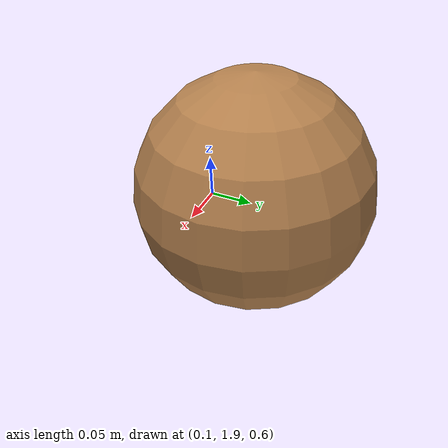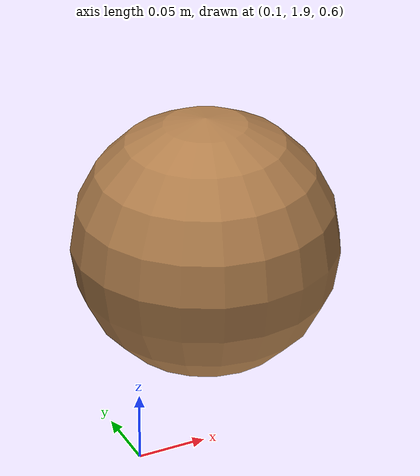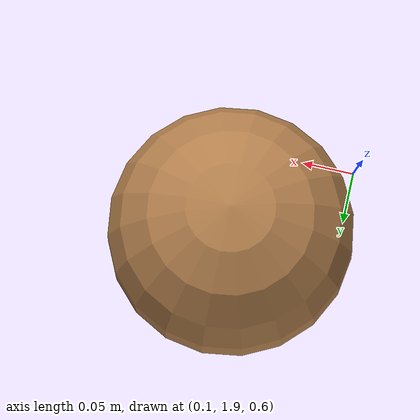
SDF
<sdf version="1.4">
  <world name="default">
    <light name="sun" type="directional">
      <cast_shadows>1</cast_shadows>
      <pose>0 0 10 0 -0 0</pose>
      <diffuse>0.8 0.8 0.8 1</diffuse>
      <specular>0.2 0.2 0.2 1</specular>
      <attenuation>
        <range>1000</range>
        <constant>0.9</constant>
        <linear>0.01</linear>
        <quadratic>0.001</quadratic>
      </attenuation>
      <direction>-0.5 0.1 -0.9</direction>
    </light>
    <physics type="ode">
      <max_step_size>0.001</max_step_size>
      <real_time_factor>1</real_time_factor>
      <real_time_update_rate>1000</real_time_update_rate>
      <gravity>0 0 -9.8</gravity>
    </physics>
    <scene>
      <ambient>0.4 0.4 0.4 1</ambient>
      <background>0.7 0.7 0.7 1</background>
      <shadows>1</shadows>
    </scene>
    <spherical_coordinates>
      <surface_model>EARTH_WGS84</surface_model>
      <latitude_deg>0</latitude_deg>
      <longitude_deg>0</longitude_deg>
      <elevation>0</elevation>
      <heading_deg>0</heading_deg>
    </spherical_coordinates>

    <gui fullscreen="0">
      <camera name="user_camera">
        <pose>4.5 -3.5 2.7 0 0.4 2.3</pose>
        <view_controller>orbit</view_controller>
      </camera>
    </gui>

    <!-- A testing model that includes the Velodyne sensor model -->
    <model name="sphere_obs">
      <pose>0.2 2 0.7 0 0 0</pose>
      <include>
        <uri>file://sphere_obs/</uri>
      </include>

      <!-- Attach the plugin to this model -->
      --<plugin name="cv_sphere" filename="libcv_sphere.so">
        <velocity>0.0</velocity>
        <sigma_model_noise>0</sigma_model_noise>
        <sigma_sensor_noise>0</sigma_sensor_noise>
      </plugin>
    </model>

    <model name="ground_plane">
    <static>1</static>
    <link name="link">
      <collision name="collision">
        <geometry>
          <plane>
            <normal>0 0 1</normal>
            <size>100 100</size>
          </plane>
        </geometry>
        <surface>
          <friction>
            <ode>
              <mu>100</mu>
              <mu2>50</mu2>
            </ode>
          </friction>
          <bounce />
          <contact>
            <ode />
          </contact>
        </surface>
        <max_contacts>10</max_contacts>
      </collision>
      <visual name="visual">
        <cast_shadows>0</cast_shadows>
        <geometry>
          <plane>
            <normal>0 0 1</normal>
            <size>100 100</size>
          </plane>
        </geometry>
        <material>
          <script>
            <uri>file://media/materials/scripts/gazebo.material</uri>
            <name>Gazebo/Grey</name>
          </script>
        </material>
      </visual>
      <velocity_decay>
        <linear>0</linear>
        <angular>0</angular>
      </velocity_decay>
      <self_collide>0</self_collide>
      <kinematic>0</kinematic>
      <gravity>1</gravity>
    </link>
  </model></world>
</sdf>

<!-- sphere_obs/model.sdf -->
<sdf version="1.5">
<model name="sphere_obs">
  <pose>0 0 0 0 0 0</pose>
  <link name ='sphere_base'>
    <gravity>0</gravity>
    <pose>0 0 0 0 0 0</pose>
    <inertial>
      <!-- rho = 500 kg/m^3 -->
      <mass>2</mass>
      <inertia>
        <!-- https://en.wikipedia.org/wiki/List_of_moments_of_inertia#List_of_3D_inertia_tensors-->
        <ixx>0.008</ixx>
        <iyy>0.008</iyy>
        <izz>0.008</izz>
        <ixy>0</ixy>
        <ixz>0</ixz>
        <iyz>0</iyz>
      </inertia>
    </inertial>
    <collision name ='collision'>
      <geometry>
        <sphere><radius>0.1</radius></sphere>
      </geometry>
    </collision>
    <visual name='visual'>
      <geometry>
        <sphere><radius>0.1</radius></sphere>
      </geometry>
      <material>
          <script>
            <uri>file://media/materials/scripts/gazebo.material</uri>
            <name>Gazebo/Wood</name>
          </script>
      </material>
    </visual>
  </link>
</model>
</sdf>
